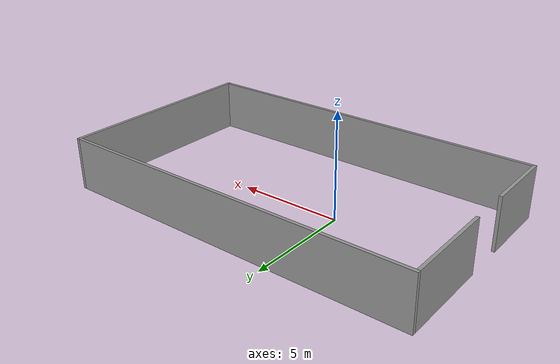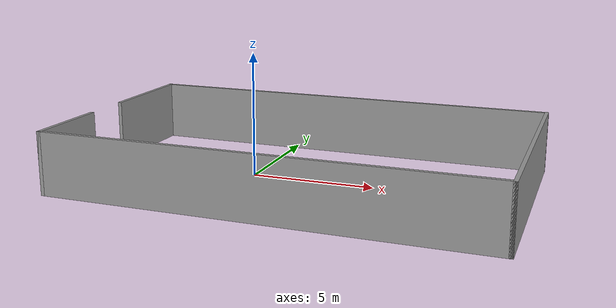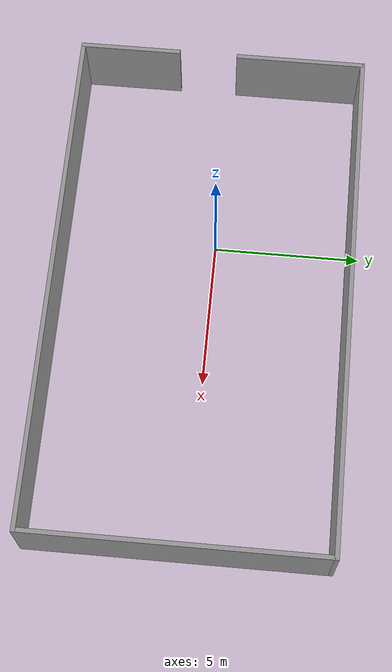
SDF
<?xml version='1.0'?>
<sdf version='1.6'>
  <model name='외벽'>
    <pose frame=''>2.27974 -0.303444 0 0 -0 0</pose>
    <link name='Wall_1'>
      <collision name='Wall_1_Collision'>
        <geometry>
          <box>
            <size>17.5 0.15 2.5</size>
          </box>
        </geometry>
        <pose frame=''>0 0 1.25 0 -0 0</pose>
      </collision>
      <visual name='Wall_1_Visual'>
        <pose frame=''>0 0 1.25 0 -0 0</pose>
        <geometry>
          <box>
            <size>17.5 0.15 2.5</size>
          </box>
        </geometry>
        <material>
          <script>
            <uri>file://media/materials/scripts/gazebo.material</uri>
            <name>Gazebo/Grey</name>
          </script>
          <ambient>1 1 1 1</ambient>
        </material>
        <meta>
          <layer>0</layer>
        </meta>
      </visual>
      <pose frame=''>-0 -4.925 0 0 -0 0</pose>
    </link>
    <link name='Wall_2'>
      <collision name='Wall_2_Collision'>
        <geometry>
          <box>
            <size>10 0.15 2.5</size>
          </box>
        </geometry>
        <pose frame=''>0 0 1.25 0 -0 0</pose>
      </collision>
      <visual name='Wall_2_Visual'>
        <pose frame=''>0 0 1.25 0 -0 0</pose>
        <geometry>
          <box>
            <size>10 0.15 2.5</size>
          </box>
        </geometry>
        <material>
          <script>
            <uri>file://media/materials/scripts/gazebo.material</uri>
            <name>Gazebo/Grey</name>
          </script>
          <ambient>1 1 1 1</ambient>
        </material>
        <meta>
          <layer>0</layer>
        </meta>
      </visual>
      <pose frame=''>8.675 0 0 0 -0 1.5708</pose>
    </link>
    <link name='Wall_3'>
      <collision name='Wall_3_Collision'>
        <geometry>
          <box>
            <size>17.5 0.15 2.5</size>
          </box>
        </geometry>
        <pose frame=''>0 0 1.25 0 -0 0</pose>
      </collision>
      <visual name='Wall_3_Visual'>
        <pose frame=''>0 0 1.25 0 -0 0</pose>
        <geometry>
          <box>
            <size>17.5 0.15 2.5</size>
          </box>
        </geometry>
        <material>
          <script>
            <uri>file://media/materials/scripts/gazebo.material</uri>
            <name>Gazebo/Grey</name>
          </script>
          <ambient>1 1 1 1</ambient>
        </material>
        <meta>
          <layer>0</layer>
        </meta>
      </visual>
      <pose frame=''>-0 4.925 0 0 -0 3.14159</pose>
    </link>
    <link name='Wall_4'>
      <collision name='Wall_4_Collision'>
        <geometry>
          <box>
            <size>4.5 0.15 2.5</size>
          </box>
        </geometry>
        <pose frame=''>0 0 1.25 0 -0 0</pose>
      </collision>
      <visual name='Wall_4_Visual'>
        <pose frame=''>0 0 1.25 0 -0 0</pose>
        <geometry>
          <box>
            <size>4.5 0.15 2.5</size>
          </box>
        </geometry>
        <material>
          <script>
            <uri>file://media/materials/scripts/gazebo.material</uri>
            <name>Gazebo/Grey</name>
          </script>
          <ambient>1 1 1 1</ambient>
        </material>
        <meta>
          <layer>0</layer>
        </meta>
      </visual>
      <pose frame=''>-8.675 2.75 0 0 -0 -1.5708</pose>
    </link>
    <link name='Wall_6'>
      <collision name='Wall_6_Collision'>
        <geometry>
          <box>
            <size>3.5 0.15 2.5</size>
          </box>
        </geometry>
        <pose frame=''>0 0 1.25 0 -0 0</pose>
      </collision>
      <visual name='Wall_6_Visual'>
        <pose frame=''>0 0 1.25 0 -0 0</pose>
        <geometry>
          <box>
            <size>3.5 0.15 2.5</size>
          </box>
        </geometry>
        <material>
          <script>
            <uri>file://media/materials/scripts/gazebo.material</uri>
            <name>Gazebo/Grey</name>
          </script>
          <ambient>1 1 1 1</ambient>
        </material>
        <meta>
          <layer>0</layer>
        </meta>
      </visual>
      <pose frame=''>-8.675 -3.25 0 0 -0 -1.5708</pose>
    </link>
    <static>1</static>
  </model>
</sdf>
